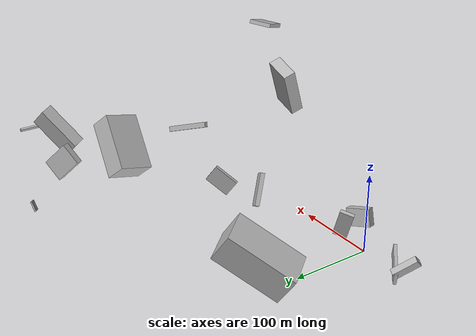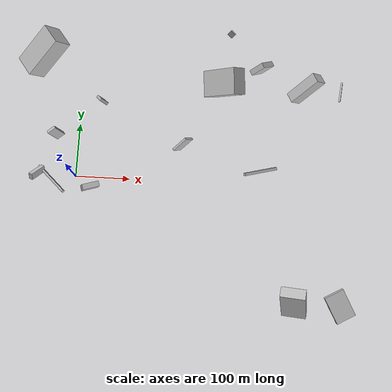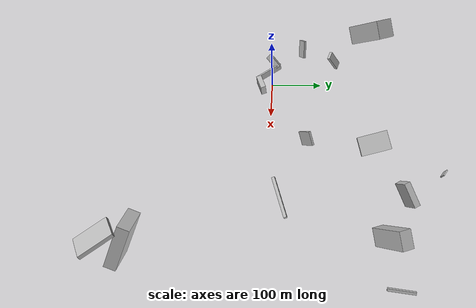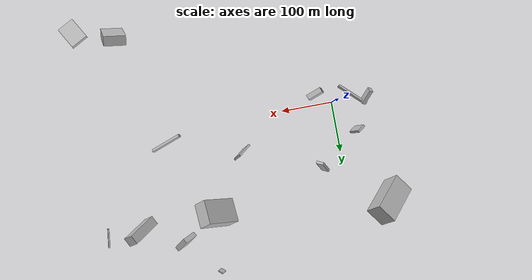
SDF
<sdf version="1.6">
 <world name="default">
  <scene>
   <sky><clouds><speed>12</speed></clouds></sky>
   <ambient>0.4 0.4 0.4 1</ambient>
   <background>0.7 0.7 0.7 1</background>
   <shadows>1</shadows>
  </scene>
  <gravity>0 0 -9.8066</gravity>
  <magnetic_field>6e-06 2.3e-05 -4.2e-05</magnetic_field>
  <physics default="0" name="default_physics" type="ode">
   <ode>
    <solver>
     <type>quick</type>
     <iters>10</iters>
     <sor>1.0</sor>
     <use_dynamic_moi_rescaling>0</use_dynamic_moi_rescaling>
    </solver>
    <constraints>
     <cfm>0</cfm>
     <erp>0.2</erp>
     <contact_max_correcting_vel>100</contact_max_correcting_vel>
     <contact_surface_layer>0.001</contact_surface_layer>
    </constraints>
   </ode>
   <max_step_size>0.004</max_step_size>
   <real_time_factor>1</real_time_factor>
   <real_time_update_rate>250</real_time_update_rate>
  </physics>
  <light name="sun" type="directional">
   <pose>0 0 10 0 0 0</pose>
   <diffuse>0.8 0.8 0.8 1</diffuse>
   <specular>0.2 0.2 0.2 1</specular>
   <attenuation>
    <range>1000</range>
    <constant>0.9</constant>
    <linear>0.01</linear>
    <quadratic>0.001</quadratic>
   </attenuation>
   <direction>-0.5 0.1 -0.9</direction>
  </light>
  <model name="building_1">
   <static>0</static>
   <pose>404.4101119998948 176.00615344008406 49.62294285360402 2.4012688185424484 0.16005960825020163 2.0153065156393177</pose>
   <link name="link">
    <gravity>0</gravity>
    <pose>0 0 13.5 0 0 0</pose>
    <collision name="collision"><geometry><box><size>19 63 27</size></box></geometry></collision>
    <visual name="visual">
     <cast_shadows>0</cast_shadows>
     <geometry><box><size>19 63 27</size></box></geometry>
     <material>
      <script>
       <uri>model://HANNAS_wall/materials/scripts</uri>
       <uri>model://HANNAS_wall/materials/textures</uri>
       <name>vrc/HANNAS_wall</name>
      </script>
     </material>
    </visual>
   </link>
  </model>
  <model name="building_2">
   <static>0</static>
   <pose>-22.243771352448416 60.84620744810559 55.712103374670995 0.20666122658859362 0.24386778722707228 -2.5133692280712285</pose>
   <link name="link">
    <gravity>0</gravity>
    <pose>0 0 17.0 0 0 0</pose>
    <collision name="collision"><geometry><box><size>16 5 34</size></box></geometry></collision>
    <visual name="visual">
     <cast_shadows>0</cast_shadows>
     <geometry><box><size>16 5 34</size></box></geometry>
     <material>
      <script>
       <uri>model://HANNAS_wall/materials/scripts</uri>
       <uri>model://HANNAS_wall/materials/textures</uri>
       <name>vrc/HANNAS_wall</name>
      </script>
     </material>
    </visual>
   </link>
  </model>
  <model name="building_3">
   <static>0</static>
   <pose>-43.73044244222042 -7.751547977476994 9.722380765086115 3.1303917248637827 0.08122948364258058 -2.3264937235799437</pose>
   <link name="link">
    <gravity>0</gravity>
    <pose>0 0 6.5 0 0 0</pose>
    <collision name="collision"><geometry><box><size>4 65 13</size></box></geometry></collision>
    <visual name="visual">
     <cast_shadows>0</cast_shadows>
     <geometry><box><size>4 65 13</size></box></geometry>
     <material>
      <script>
       <uri>model://HANNAS_wall/materials/scripts</uri>
       <uri>model://HANNAS_wall/materials/textures</uri>
       <name>vrc/HANNAS_wall</name>
      </script>
     </material>
    </visual>
   </link>
  </model>
  <model name="building_4">
   <static>0</static>
   <pose>30.2862698742164 -16.30002820941228 25.043369685935357 1.7165561820406088 0.2550956669579749 0.3495611393469302</pose>
   <link name="link">
    <gravity>0</gravity>
    <pose>0 0 5.0 0 0 0</pose>
    <collision name="collision"><geometry><box><size>30 22 10</size></box></geometry></collision>
    <visual name="visual">
     <cast_shadows>0</cast_shadows>
     <geometry><box><size>30 22 10</size></box></geometry>
     <material>
      <script>
       <uri>model://HANNAS_wall/materials/scripts</uri>
       <uri>model://HANNAS_wall/materials/textures</uri>
       <name>vrc/HANNAS_wall</name>
      </script>
     </material>
    </visual>
   </link>
  </model>
  <model name="building_5">
   <static>0</static>
   <pose>263.38844636169324 145.5185043723389 70.4660295007444 1.1897524049949997 -0.7378520699266241 -2.7939317509487287</pose>
   <link name="link">
    <gravity>0</gravity>
    <pose>0 0 23.0 0 0 0</pose>
    <collision name="collision"><geometry><box><size>29 71 46</size></box></geometry></collision>
    <visual name="visual">
     <cast_shadows>0</cast_shadows>
     <geometry><box><size>29 71 46</size></box></geometry>
     <material>
      <script>
       <uri>model://HANNAS_wall/materials/scripts</uri>
       <uri>model://HANNAS_wall/materials/textures</uri>
       <name>vrc/HANNAS_wall</name>
      </script>
     </material>
    </visual>
   </link>
  </model>
  <model name="building_6">
   <static>0</static>
   <pose>448.6996859627171 -189.5524065960148 103.94040984011869 -2.8932855194558726 -1.2391111931963918 -1.291009950377622</pose>
   <link name="link">
    <gravity>0</gravity>
    <pose>0 0 24.0 0 0 0</pose>
    <collision name="collision"><geometry><box><size>6 33 48</size></box></geometry></collision>
    <visual name="visual">
     <cast_shadows>0</cast_shadows>
     <geometry><box><size>6 33 48</size></box></geometry>
     <material>
      <script>
       <uri>model://HANNAS_wall/materials/scripts</uri>
       <uri>model://HANNAS_wall/materials/textures</uri>
       <name>vrc/HANNAS_wall</name>
      </script>
     </material>
    </visual>
   </link>
  </model>
  <model name="building_7">
   <static>0</static>
   <pose>393.8037289344111 -190.69774980297763 49.524111469478406 2.88635296110277 0.36463011064583184 1.3833309334401434</pose>
   <link name="link">
    <gravity>0</gravity>
    <pose>0 0 40.0 0 0 0</pose>
    <collision name="collision"><geometry><box><size>19 43 80</size></box></geometry></collision>
    <visual name="visual">
     <cast_shadows>0</cast_shadows>
     <geometry><box><size>19 43 80</size></box></geometry>
     <material>
      <script>
       <uri>model://HANNAS_wall/materials/scripts</uri>
       <uri>model://HANNAS_wall/materials/textures</uri>
       <name>vrc/HANNAS_wall</name>
      </script>
     </material>
    </visual>
   </link>
  </model>
  <model name="building_8">
   <static>0</static>
   <pose>53.30906604706422 119.19547582253568 96.3333579203608 2.004369101951839 -0.9826919302298481 -0.9317425752402285</pose>
   <link name="link">
    <gravity>0</gravity>
    <pose>0 0 2.5 0 0 0</pose>
    <collision name="collision"><geometry><box><size>37 14 5</size></box></geometry></collision>
    <visual name="visual">
     <cast_shadows>0</cast_shadows>
     <geometry><box><size>37 14 5</size></box></geometry>
     <material>
      <script>
       <uri>model://HANNAS_wall/materials/scripts</uri>
       <uri>model://HANNAS_wall/materials/textures</uri>
       <name>vrc/HANNAS_wall</name>
      </script>
     </material>
    </visual>
   </link>
  </model>
  <model name="building_9">
   <static>0</static>
   <pose>364.0786137512162 29.90296864412234 20.19673649746023 0.6827889289069511 -1.0665173889481083 -0.42467584535081376</pose>
   <link name="link">
    <gravity>0</gravity>
    <pose>0 0 33.0 0 0 0</pose>
    <collision name="collision"><geometry><box><size>7 5 66</size></box></geometry></collision>
    <visual name="visual">
     <cast_shadows>0</cast_shadows>
     <geometry><box><size>7 5 66</size></box></geometry>
     <material>
      <script>
       <uri>model://HANNAS_wall/materials/scripts</uri>
       <uri>model://HANNAS_wall/materials/textures</uri>
       <name>vrc/HANNAS_wall</name>
      </script>
     </material>
    </visual>
   </link>
  </model>
  <model name="building_10">
   <static>0</static>
   <pose>483.3660347204594 182.50381964478228 18.91511828753979 1.9379802594583129 -0.030928736159836445 -1.704973440263508</pose>
   <link name="link">
    <gravity>0</gravity>
    <pose>0 0 1.5 0 0 0</pose>
    <collision name="collision"><geometry><box><size>38 4 3</size></box></geometry></collision>
    <visual name="visual">
     <cast_shadows>0</cast_shadows>
     <geometry><box><size>38 4 3</size></box></geometry>
     <material>
      <script>
       <uri>model://HANNAS_wall/materials/scripts</uri>
       <uri>model://HANNAS_wall/materials/textures</uri>
       <name>vrc/HANNAS_wall</name>
      </script>
     </material>
    </visual>
   </link>
  </model>
  <model name="building_11">
   <static>0</static>
   <pose>-32.05025183314491 223.8361830008816 116.92093099761406 -2.1295893233138283 0.15218172795509494 2.211886970066034</pose>
   <link name="link">
    <gravity>0</gravity>
    <pose>0 0 40.0 0 0 0</pose>
    <collision name="collision"><geometry><box><size>40 36 80</size></box></geometry></collision>
    <visual name="visual">
     <cast_shadows>0</cast_shadows>
     <geometry><box><size>40 36 80</size></box></geometry>
     <material>
      <script>
       <uri>model://HANNAS_wall/materials/scripts</uri>
       <uri>model://HANNAS_wall/materials/textures</uri>
       <name>vrc/HANNAS_wall</name>
      </script>
     </material>
    </visual>
   </link>
  </model>
  <model name="building_12">
   <static>0</static>
   <pose>192.5392223157399 66.45043364420897 26.567393423134984 -1.4826413466981918 0.5977192139130862 -2.4876010070512473</pose>
   <link name="link">
    <gravity>0</gravity>
    <pose>0 0 2.0 0 0 0</pose>
    <collision name="collision"><geometry><box><size>33 25 4</size></box></geometry></collision>
    <visual name="visual">
     <cast_shadows>0</cast_shadows>
     <geometry><box><size>33 25 4</size></box></geometry>
     <material>
      <script>
       <uri>model://HANNAS_wall/materials/scripts</uri>
       <uri>model://HANNAS_wall/materials/textures</uri>
       <name>vrc/HANNAS_wall</name>
      </script>
     </material>
    </visual>
   </link>
  </model>
  <model name="building_13">
   <static>0</static>
   <pose>-76.17725352327166 -9.367853772266658 23.950366769263116 -2.567616341012401 0.8179827592583506 -1.5030123173097711</pose>
   <link name="link">
    <gravity>0</gravity>
    <pose>0 0 16.0 0 0 0</pose>
    <collision name="collision"><geometry><box><size>12 8 32</size></box></geometry></collision>
    <visual name="visual">
     <cast_shadows>0</cast_shadows>
     <geometry><box><size>12 8 32</size></box></geometry>
     <material>
      <script>
       <uri>model://HANNAS_wall/materials/scripts</uri>
       <uri>model://HANNAS_wall/materials/textures</uri>
       <name>vrc/HANNAS_wall</name>
      </script>
     </material>
    </visual>
   </link>
  </model>
  <model name="building_14">
   <static>0</static>
   <pose>271.62580361533884 284.61525007164164 18.664640071848247 -0.42389665718322705 0.29667635887012 -0.6605057623794514</pose>
   <link name="link">
    <gravity>0</gravity>
    <pose>0 0 6.5 0 0 0</pose>
    <collision name="collision"><geometry><box><size>11 2 13</size></box></geometry></collision>
    <visual name="visual">
     <cast_shadows>0</cast_shadows>
     <geometry><box><size>11 2 13</size></box></geometry>
     <material>
      <script>
       <uri>model://HANNAS_wall/materials/scripts</uri>
       <uri>model://HANNAS_wall/materials/textures</uri>
       <name>vrc/HANNAS_wall</name>
      </script>
     </material>
    </visual>
   </link>
  </model>
  <model name="building_15">
   <static>0</static>
   <pose>321.91822228604985 210.24562269930294 28.61589558824516 0.8253523149164413 -0.13449411210542084 2.0792191025682016</pose>
   <link name="link">
    <gravity>0</gravity>
    <pose>0 0 14.5 0 0 0</pose>
    <collision name="collision"><geometry><box><size>10 39 29</size></box></geometry></collision>
    <visual name="visual">
     <cast_shadows>0</cast_shadows>
     <geometry><box><size>10 39 29</size></box></geometry>
     <material>
      <script>
       <uri>model://HANNAS_wall/materials/scripts</uri>
       <uri>model://HANNAS_wall/materials/textures</uri>
       <name>vrc/HANNAS_wall</name>
      </script>
     </material>
    </visual>
   </link>
  </model>
 </world>
</sdf>
